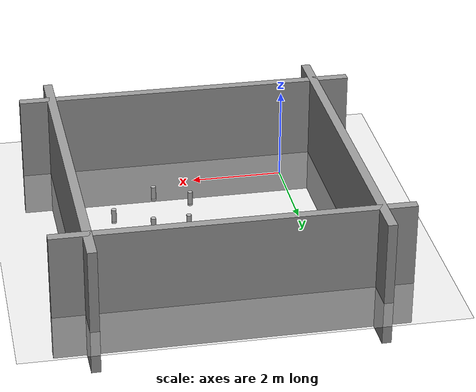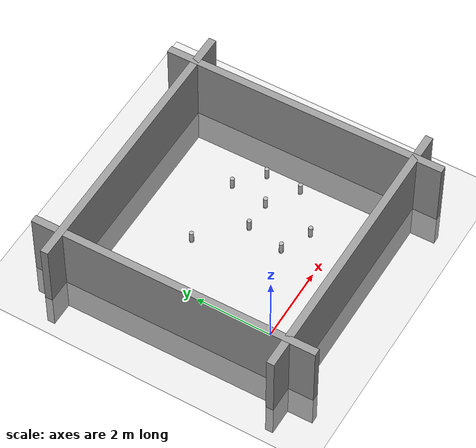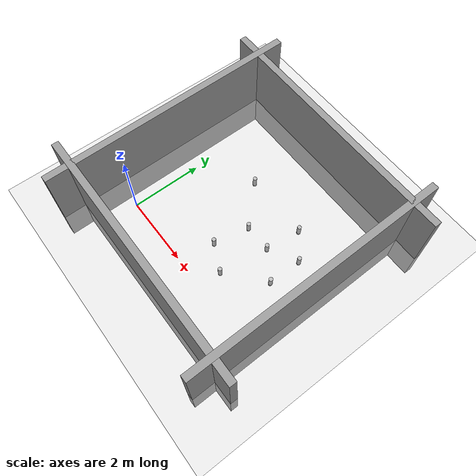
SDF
<sdf version="1.4">
 <world name="default">
  <light name="sun" type="directional">
   <pose>0 0 10 0 -0 0</pose>
   <diffuse>0.8 0.8 0.8 1</diffuse>
   <specular>0.2 0.2 0.2 1</specular>
   <attenuation>
    <range>1000</range>
    <constant>0.9</constant>
    <linear>0.01</linear>
    <quadratic>0.001</quadratic>
   </attenuation>
   <direction>-0.5 0.1 -0.9</direction>
  </light>
  <model name="ground_plane">
   <static>1</static>
   <link name="link">
    <collision name="collision">
     <geometry><plane><normal>0 0 1</normal><size>100 100</size></plane></geometry>
     <surface><friction><ode><mu>100</mu><mu2>50</mu2></ode></friction></surface>
    </collision>
    <visual name="visual">
     <cast_shadows>0</cast_shadows>
     <geometry><plane><normal>0 0 1</normal><size>100 100</size></plane></geometry>
     <material>
      <script><uri>file://media/materials/scripts/gazebo.material</uri><name>Gazebo/Grey</name></script>
     </material>
    </visual>
    <velocity_decay><linear>0</linear><angular>0</angular></velocity_decay>
   </link>
  </model>
  <physics type="ode">
   <max_step_size>0.001</max_step_size>
   <real_time_factor>1</real_time_factor>
   <real_time_update_rate>1000</real_time_update_rate>
   <gravity>0 0 -9.8</gravity>
  </physics>
  <scene><ambient>0.4 0.4 0.4 1</ambient><background>0.7 0.7 0.7 1</background><shadows>1</shadows></scene>
  <spherical_coordinates>
   <surface_model>EARTH_WGS84</surface_model>
   <latitude_deg>0</latitude_deg>
   <longitude_deg>0</longitude_deg>
   <elevation>0</elevation>
   <heading_deg>0</heading_deg>
  </spherical_coordinates>
  <model name="wall1">
   <static>1</static>
   <link name="link">
    <pose>0 0 0.42 0 -0 0</pose>
    <collision name="collision"><geometry><box><size>7.5 0.2 2.8</size></box></geometry></collision>
    <visual name="visual">
     <cast_shadows>0</cast_shadows>
     <geometry><box><size>7.5 0.2 2.8</size></box></geometry>
     <material>
      <script>
       <uri>model://grey_wall/materials/scripts</uri>
       <uri>model://grey_wall/materials/textures</uri>
       <name>vrc/grey_wall</name>
      </script>
     </material>
    </visual>
   </link>
   <pose>-1 2 0 0 -0 -1.55905</pose>
  </model>
  <model name="wall2">
   <static>1</static>
   <link name="link">
    <pose>0 0 0.42 0 -0 0</pose>
    <collision name="collision"><geometry><box><size>7.5 0.2 2.8</size></box></geometry></collision>
    <visual name="visual">
     <cast_shadows>0</cast_shadows>
     <geometry><box><size>7.5 0.2 2.8</size></box></geometry>
     <material>
      <script>
       <uri>model://grey_wall/materials/scripts</uri>
       <uri>model://grey_wall/materials/textures</uri>
       <name>vrc/grey_wall</name>
      </script>
     </material>
    </visual>
   </link>
   <pose>2 5 0 0 -0 0</pose>
  </model>
  <model name="wall3">
   <static>1</static>
   <link name="link">
    <pose>0 0 0.42 0 -0 0</pose>
    <collision name="collision"><geometry><box><size>7.5 0.2 2.8</size></box></geometry></collision>
    <visual name="visual">
     <cast_shadows>0</cast_shadows>
     <geometry><box><size>7.5 0.2 2.8</size></box></geometry>
     <material>
      <script>
       <uri>model://grey_wall/materials/scripts</uri>
       <uri>model://grey_wall/materials/textures</uri>
       <name>vrc/grey_wall</name>
      </script>
     </material>
    </visual>
   </link>
   <pose>5 2 0 0 -0 -1.55905</pose>
  </model>
  <model name="wall4">
   <static>1</static>
   <link name="link">
    <pose>0 0 0.42 0 -0 0</pose>
    <collision name="collision"><geometry><box><size>7.5 0.2 2.8</size></box></geometry></collision>
    <visual name="visual">
     <cast_shadows>0</cast_shadows>
     <geometry><box><size>7.5 0.2 2.8</size></box></geometry>
     <material>
      <script>
       <uri>model://grey_wall/materials/scripts</uri>
       <uri>model://grey_wall/materials/textures</uri>
       <name>vrc/grey_wall</name>
      </script>
     </material>
    </visual>
   </link>
   <pose>2 -1 0 0 -0 0</pose>
  </model>
  <model name="can2.430691266622">
   <link name="link">
    <pose>0 0 0.115 0 -0 0</pose>
    <inertial>
     <mass>0.39</mass>
     <inertia><ixx>0.00058</ixx><ixy>0</ixy><ixz>0</ixz><iyy>0.00058</iyy><iyz>0</iyz><izz>0.00019</izz></inertia>
    </inertial>
    <collision name="collision">
     <geometry><cylinder><radius>0.055</radius><length>0.33</length></cylinder></geometry>
    </collision>
    <visual name="visual">
     <geometry><cylinder><radius>0.055</radius><length>0.33</length></cylinder></geometry>
     <material>
      <script>
       <uri>model://beer/materials/scripts</uri>
       <uri>model://beer/materials/textures</uri>
       <name>Beer/Diffuse</name>
      </script>
     </material>
    </visual>
   </link>
   <pose>2.43069126662 2 -2e-06 1e-06 0 -9.5e-05</pose>
  </model>
  <model name="can41.48422287647">
   <link name="link">
    <pose>0 0 0.115 0 -0 0</pose>
    <inertial>
     <mass>0.39</mass>
     <inertia><ixx>0.00058</ixx><ixy>0</ixy><ixz>0</ixz><iyy>0.00058</iyy><iyz>0</iyz><izz>0.00019</izz></inertia>
    </inertial>
    <collision name="collision">
     <geometry><cylinder><radius>0.055</radius><length>0.33</length></cylinder></geometry>
    </collision>
    <visual name="visual">
     <geometry><cylinder><radius>0.055</radius><length>0.33</length></cylinder></geometry>
     <material>
      <script>
       <uri>model://beer/materials/scripts</uri>
       <uri>model://beer/materials/textures</uri>
       <name>Beer/Diffuse</name>
      </script>
     </material>
    </visual>
   </link>
   <pose>4 1.48422287647 -2e-06 1e-06 0 -9.5e-05</pose>
  </model>
  <model name="can3.317977943363">
   <link name="link">
    <pose>0 0 0.115 0 -0 0</pose>
    <inertial>
     <mass>0.39</mass>
     <inertia><ixx>0.00058</ixx><ixy>0</ixy><ixz>0</ixz><iyy>0.00058</iyy><iyz>0</iyz><izz>0.00019</izz></inertia>
    </inertial>
    <collision name="collision">
     <geometry><cylinder><radius>0.055</radius><length>0.33</length></cylinder></geometry>
    </collision>
    <visual name="visual">
     <geometry><cylinder><radius>0.055</radius><length>0.33</length></cylinder></geometry>
     <material>
      <script>
       <uri>model://beer/materials/scripts</uri>
       <uri>model://beer/materials/textures</uri>
       <name>Beer/Diffuse</name>
      </script>
     </material>
    </visual>
   </link>
   <pose>3.31797794336 3 -2e-06 1e-06 0 -9.5e-05</pose>
  </model>
  <model name="can3.20867506222">
   <link name="link">
    <pose>0 0 0.115 0 -0 0</pose>
    <inertial>
     <mass>0.39</mass>
     <inertia><ixx>0.00058</ixx><ixy>0</ixy><ixz>0</ixz><iyy>0.00058</iyy><iyz>0</iyz><izz>0.00019</izz></inertia>
    </inertial>
    <collision name="collision">
     <geometry><cylinder><radius>0.055</radius><length>0.33</length></cylinder></geometry>
    </collision>
    <visual name="visual">
     <geometry><cylinder><radius>0.055</radius><length>0.33</length></cylinder></geometry>
     <material>
      <script>
       <uri>model://beer/materials/scripts</uri>
       <uri>model://beer/materials/textures</uri>
       <name>Beer/Diffuse</name>
      </script>
     </material>
    </visual>
   </link>
   <pose>3.2086750622 2 -2e-06 1e-06 0 -9.5e-05</pose>
  </model>
  <model name="can1.422012794423">
   <link name="link">
    <pose>0 0 0.115 0 -0 0</pose>
    <inertial>
     <mass>0.39</mass>
     <inertia><ixx>0.00058</ixx><ixy>0</ixy><ixz>0</ixz><iyy>0.00058</iyy><iyz>0</iyz><izz>0.00019</izz></inertia>
    </inertial>
    <collision name="collision">
     <geometry><cylinder><radius>0.055</radius><length>0.33</length></cylinder></geometry>
    </collision>
    <visual name="visual">
     <geometry><cylinder><radius>0.055</radius><length>0.33</length></cylinder></geometry>
     <material>
      <script>
       <uri>model://beer/materials/scripts</uri>
       <uri>model://beer/materials/textures</uri>
       <name>Beer/Diffuse</name>
      </script>
     </material>
    </visual>
   </link>
   <pose>1.42201279442 3 -2e-06 1e-06 0 -9.5e-05</pose>
  </model>
  <model name="can42.42594125713">
   <link name="link">
    <pose>0 0 0.115 0 -0 0</pose>
    <inertial>
     <mass>0.39</mass>
     <inertia><ixx>0.00058</ixx><ixy>0</ixy><ixz>0</ixz><iyy>0.00058</iyy><iyz>0</iyz><izz>0.00019</izz></inertia>
    </inertial>
    <collision name="collision">
     <geometry><cylinder><radius>0.055</radius><length>0.33</length></cylinder></geometry>
    </collision>
    <visual name="visual">
     <geometry><cylinder><radius>0.055</radius><length>0.33</length></cylinder></geometry>
     <material>
      <script>
       <uri>model://beer/materials/scripts</uri>
       <uri>model://beer/materials/textures</uri>
       <name>Beer/Diffuse</name>
      </script>
     </material>
    </visual>
   </link>
   <pose>4 2.42594125713 -2e-06 1e-06 0 -9.5e-05</pose>
  </model>
  <model name="can2.236545572811">
   <link name="link">
    <pose>0 0 0.115 0 -0 0</pose>
    <inertial>
     <mass>0.39</mass>
     <inertia><ixx>0.00058</ixx><ixy>0</ixy><ixz>0</ixz><iyy>0.00058</iyy><iyz>0</iyz><izz>0.00019</izz></inertia>
    </inertial>
    <collision name="collision">
     <geometry><cylinder><radius>0.055</radius><length>0.33</length></cylinder></geometry>
    </collision>
    <visual name="visual">
     <geometry><cylinder><radius>0.055</radius><length>0.33</length></cylinder></geometry>
     <material>
      <script>
       <uri>model://beer/materials/scripts</uri>
       <uri>model://beer/materials/textures</uri>
       <name>Beer/Diffuse</name>
      </script>
     </material>
    </visual>
   </link>
   <pose>2.23654557281 1 -2e-06 1e-06 0 -9.5e-05</pose>
  </model>
  <model name="can30.631958081008">
   <link name="link">
    <pose>0 0 0.115 0 -0 0</pose>
    <inertial>
     <mass>0.39</mass>
     <inertia><ixx>0.00058</ixx><ixy>0</ixy><ixz>0</ixz><iyy>0.00058</iyy><iyz>0</iyz><izz>0.00019</izz></inertia>
    </inertial>
    <collision name="collision">
     <geometry><cylinder><radius>0.055</radius><length>0.33</length></cylinder></geometry>
    </collision>
    <visual name="visual">
     <geometry><cylinder><radius>0.055</radius><length>0.33</length></cylinder></geometry>
     <material>
      <script>
       <uri>model://beer/materials/scripts</uri>
       <uri>model://beer/materials/textures</uri>
       <name>Beer/Diffuse</name>
      </script>
     </material>
    </visual>
   </link>
   <pose>3 0.631958081008 -2e-06 1e-06 0 -9.5e-05</pose>
  </model>
 </world>
</sdf>
